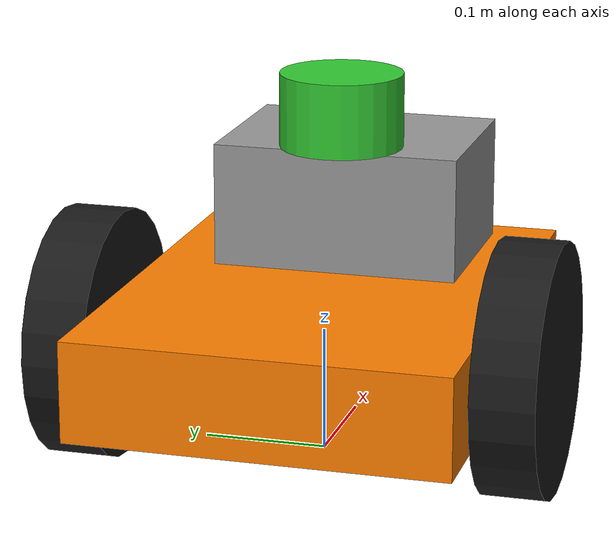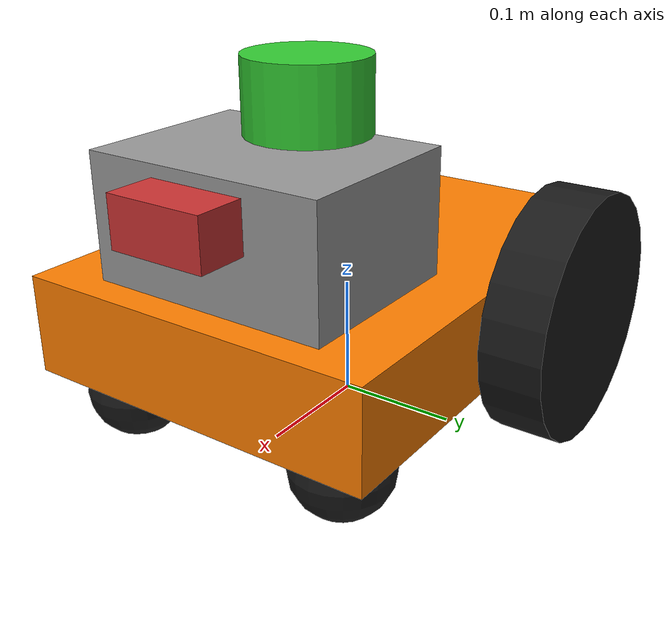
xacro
<?xml version="1.0"?>
<robot name="sam" xmlns:xacro="http://www.ros.org/wiki/xacro">

    <!-- Include the materials file for colors -->
    <xacro:include filename="$(find sam_description)/urdf/materials.xacro" />

    <!-- Include the Gazebo plugins and sensor definitions -->
    <xacro:include filename="$(find sam_description)/urdf/sam.gazebo" />

    <!--
        LINKS
        Links describe the physical parts of the robot.
    -->

    <!-- Base Footprint: A non-visual link at the bottom of the robot.
         This is the root of the robot's TF tree. -->
    <link name="base_footprint" />

    <!-- Base Link: The main chassis of the robot. -->
    <link name="base_link">
        <visual>
            <!-- Main Body -->
            <geometry>
                <box size="0.4 0.3 0.08"/>
            </geometry>
            <material name="Orange"/>
        </visual>
        <visual>
            <!-- NEW: Sensor Tower -->
            <origin xyz="0.1 0 0.09" rpy="0 0 0"/>
            <geometry>
                <box size="0.15 0.2 0.1"/>
            </geometry>
            <material name="Grey"/>
        </visual>
        <collision>
            <geometry>
                <box size="0.4 0.3 0.08"/>
            </geometry>
        </collision>
        <collision>
            <origin xyz="0.1 0 0.09" rpy="0 0 0"/>
            <geometry>
                <box size="0.15 0.2 0.1"/>
            </geometry>
        </collision>
        <inertial>
            <origin xyz="0 0 0" rpy="0 0 0"/>
            <mass value="4.8"/>
            <inertia ixx="0.028" ixy="0.0" ixz="0.0" iyy="0.038" iyz="0.0" izz="0.048"/>
        </inertial>
    </link>

    <!-- Right Wheel -->
    <link name="right_wheel_link">
        <visual>
            <origin xyz="0 0 0" rpy="1.5707 0 0"/>
            <geometry>
                <cylinder radius="0.1" length="0.05"/>
            </geometry>
            <material name="Black"/>
        </visual>
        <collision>
            <origin xyz="0 0 0" rpy="1.5707 0 0"/>
            <geometry>
                <cylinder radius="0.1" length="0.05"/>
            </geometry>
        </collision>
        <inertial>
            <origin xyz="0 0 0" rpy="0 0 0"/>
            <mass value="0.45"/>
            <inertia ixx="0.0009" ixy="0.0" ixz="0.0" iyy="0.0009" iyz="0.0" izz="0.0018"/>
        </inertial>
    </link>

    <!-- Left Wheel -->
    <link name="left_wheel_link">
        <visual>
            <origin xyz="0 0 0" rpy="1.5707 0 0"/>
            <geometry>
                <cylinder radius="0.1" length="0.05"/>
            </geometry>
            <material name="Black"/>
        </visual>
        <collision>
            <origin xyz="0 0 0" rpy="1.5707 0 0"/>
            <geometry>
                <cylinder radius="0.1" length="0.05"/>
            </geometry>
        </collision>
        <inertial>
            <origin xyz="0 0 0" rpy="0 0 0"/>
            <mass value="0.45"/>
            <inertia ixx="0.0009" ixy="0.0" ixz="0.0" iyy="0.0009" iyz="0.0" izz="0.0018"/>
        </inertial>
    </link>

    <!-- Front Right Caster Wheel -->
    <link name="caster_front_right_link">
        <visual>
            <geometry>
                <sphere radius="0.04"/>
            </geometry>
            <material name="Black"/>
        </visual>
        <collision>
            <geometry>
                <sphere radius="0.04"/>
            </geometry>
        </collision>
        <inertial>
            <mass value="0.2"/>
            <inertia ixx="0.0001" ixy="0" ixz="0" iyy="0.0001" iyz="0" izz="0.0001"/>
        </inertial>
    </link>

    <!-- Front Left Caster Wheel -->
    <link name="caster_front_left_link">
        <visual>
            <geometry>
                <sphere radius="0.04"/>
            </geometry>
            <material name="Black"/>
        </visual>
        <collision>
            <geometry>
                <sphere radius="0.04"/>
            </geometry>
        </collision>
        <inertial>
            <mass value="0.2"/>
            <inertia ixx="0.0001" ixy="0" ixz="0" iyy="0.0001" iyz="0" izz="0.0001"/>
        </inertial>
    </link>

    <!-- Camera Link: A visible box to represent the camera -->
    <link name="camera_link">
        <visual>
            <geometry>
                <box size="0.04 0.08 0.04"/>
            </geometry>
            <material name="Red"/>
        </visual>
        <collision>
            <geometry>
                <box size="0.04 0.08 0.04"/>
            </geometry>
        </collision>
        <inertial>
            <mass value="0.05"/>
            <inertia ixx="1e-5" ixy="0" ixz="0" iyy="1e-5" iyz="0" izz="1e-5"/>
        </inertial>
    </link>

    <!-- Lidar Link: A visible cylinder to represent the lidar -->
    <link name="lidar_link">
        <visual>
            <geometry>
                <cylinder radius="0.05" length="0.06"/>
            </geometry>
            <material name="Green"/>
        </visual>
        <collision>
            <geometry>
                <cylinder radius="0.05" length="0.06"/>
            </geometry>
        </collision>
        <inertial>
            <mass value="0.1"/>
            <inertia ixx="1e-4" ixy="0" ixz="0" iyy="1e-4" iyz="0" izz="1e-4"/>
        </inertial>
    </link>

    <!-- IMU Link: This link is not visual, its position is what matters. -->
    <link name="imu_link"/>

    <!--
        JOINTS
        Joints connect links together.
    -->

    <!-- Connects base_footprint to base_link -->
    <joint name="base_joint" type="fixed">
        <parent link="base_footprint"/>
        <child link="base_link"/>
        <origin xyz="0.0 0.0 0.1" rpy="0 0 0"/>
    </joint>

    <!-- Connects Right Wheel to Base Link -->
    <joint name="right_wheel_joint" type="continuous">
        <parent link="base_link"/>
        <child link="right_wheel_link"/>
        <origin xyz="-0.05 -0.175 0.0" rpy="0 0 0"/>
        <axis xyz="0 1 0"/>
    </joint>

    <!-- Connects Left Wheel to Base Link -->
    <joint name="left_wheel_joint" type="continuous">
        <parent link="base_link"/>
        <child link="left_wheel_link"/>
        <origin xyz="-0.05 0.175 0.0" rpy="0 0 0"/>
        <axis xyz="0 1 0"/>
    </joint>

    <!-- Connects Front Right Caster to Base Link.
         CORRECTED: Lowered Z-axis to be visible below the chassis. -->
    <joint name="caster_front_right_joint" type="fixed">
        <parent link="base_link"/>
        <child link="caster_front_right_link"/>
        <origin xyz="0.15 -0.1 -0.06" rpy="0 0 0"/>
    </joint>

    <!-- Connects Front Left Caster to Base Link.
         CORRECTED: Lowered Z-axis to be visible below the chassis. -->
    <joint name="caster_front_left_joint" type="fixed">
        <parent link="base_link"/>
        <child link="caster_front_left_link"/>
        <origin xyz="0.15 0.1 -0.06" rpy="0 0 0"/>
    </joint>

    <!-- Connects Camera to Base Link on the sensor tower -->
    <joint name="camera_joint" type="fixed">
        <parent link="base_link"/>
        <child link="camera_link"/>
        <!-- CORRECTED: Moved camera to the front face of the sensor tower -->
        <origin xyz="0.195 0 0.11" rpy="0 0 0"/>
    </joint>

    <!-- Connects Lidar to Base Link on top of the sensor tower -->
    <joint name="lidar_joint" type="fixed">
        <parent link="base_link"/>
        <child link="lidar_link"/>
        <origin xyz="0.05 0 0.17" rpy="0 0 0"/>
    </joint>

    <!-- Connects IMU to Base Link -->
    <joint name="imu_joint" type="fixed">
        <parent link="base_link"/>
        <child link="imu_link"/>
        <origin xyz="0 0 0" rpy="0 0 0"/>
    </joint>

</robot>

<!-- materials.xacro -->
<robot xmlns:xacro="http://www.ros.org/wiki/xacro">

    <!--
        This file defines the colors used for the robot's visual appearance.
    -->

    <material name="Black">
        <color rgba="0.1 0.1 0.1 1.0"/>
    </material>

    <material name="Blue">
        <color rgba="0.2 0.2 0.8 1.0"/>
    </material>

    <material name="Green">
        <color rgba="0.2 0.8 0.2 1.0"/>
    </material>

    <material name="Red">
        <color rgba="0.8 0.2 0.2 1.0"/>
    </material>

    <material name="Orange">
        <color rgba="1.0 0.5 0.0 1.0"/>
    </material>

</robot>
